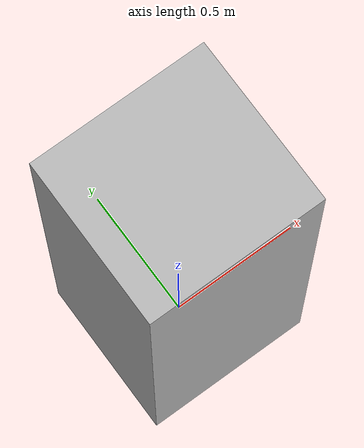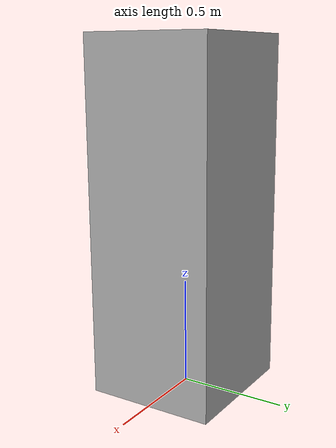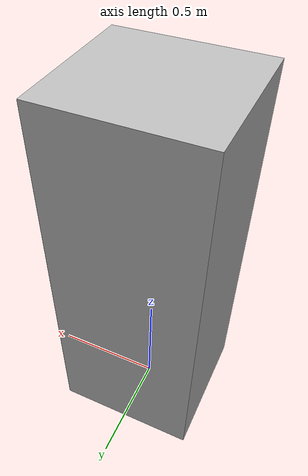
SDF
<?xml version="1.0"?>
<sdf version="1.6">
  <model name="rwc2019/fridge">
    <link name="1_link">
      <collision name="1_col">
        <geometry>
          <box>
            <size>0.635 0.6 1.63</size>
          </box>
        </geometry>
      </collision>
      <visual name="1_vis">
        <geometry>
          <box>
            <size>0.635 0.6 1.63</size>
          </box>
        </geometry>
      </visual>
      <pose>0.0 0.0 0.815 0 0 0</pose>
    </link>
    <link name="on_top_of">
      <virtual_volume name="on_top_of_vv">
        <geometry>
          <box>
            <size>0.595 0.54 0.25</size>
          </box>
        </geometry>
        <pose>0.02 0.0 1.775 0 0 0</pose>
      </virtual_volume>
    </link>
    <link name="in_front_of">
      <virtual_volume name="in_front_of_vv">
        <geometry>
          <box>
            <size>0.2 0.4 0.01</size>
          </box>
        </geometry>
        <pose>0.8175 0.0 0.005 0 0 0</pose>
      </virtual_volume>
    </link>
    <static>true</static>
  </model>
</sdf>
